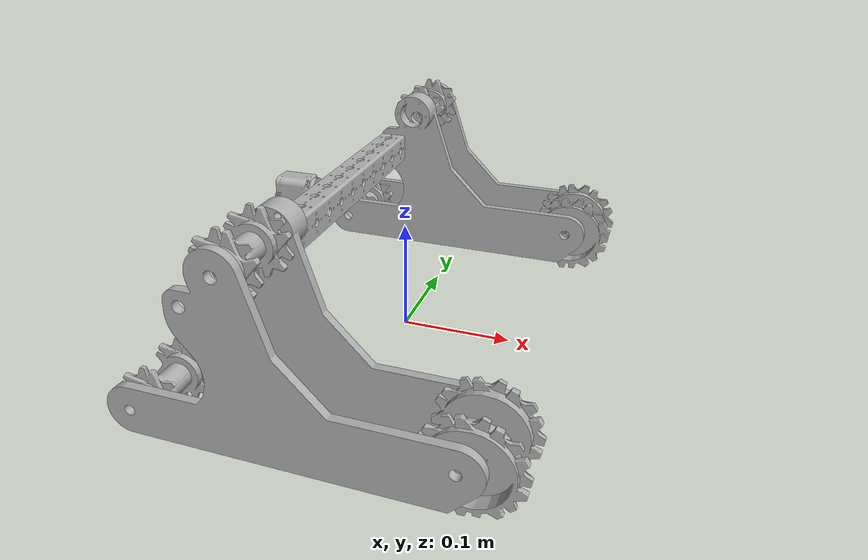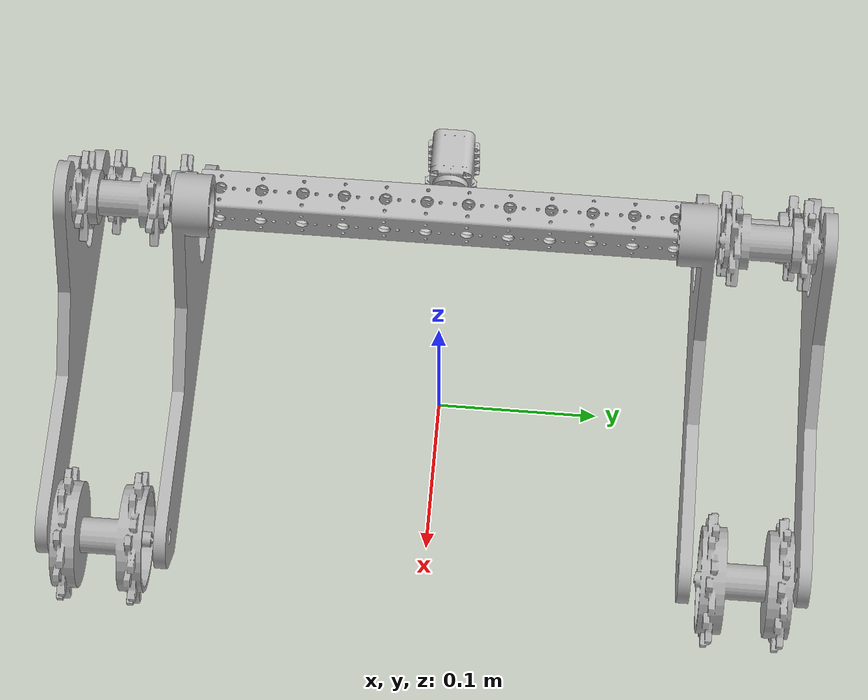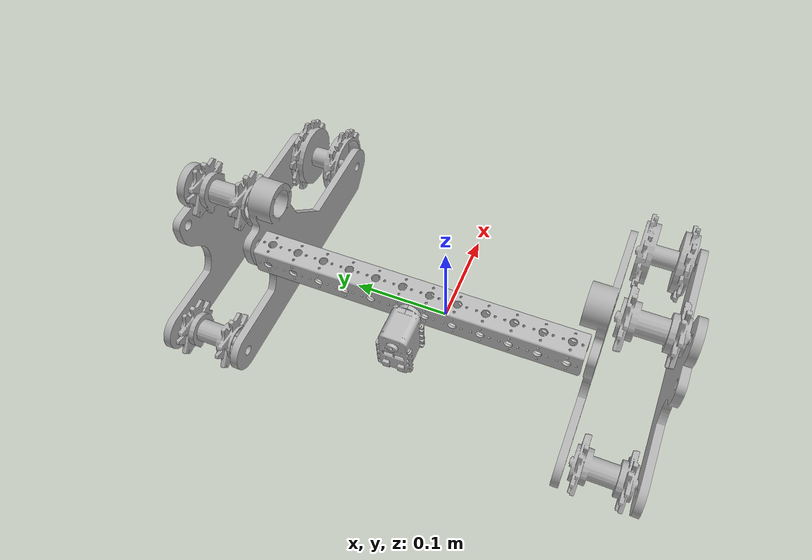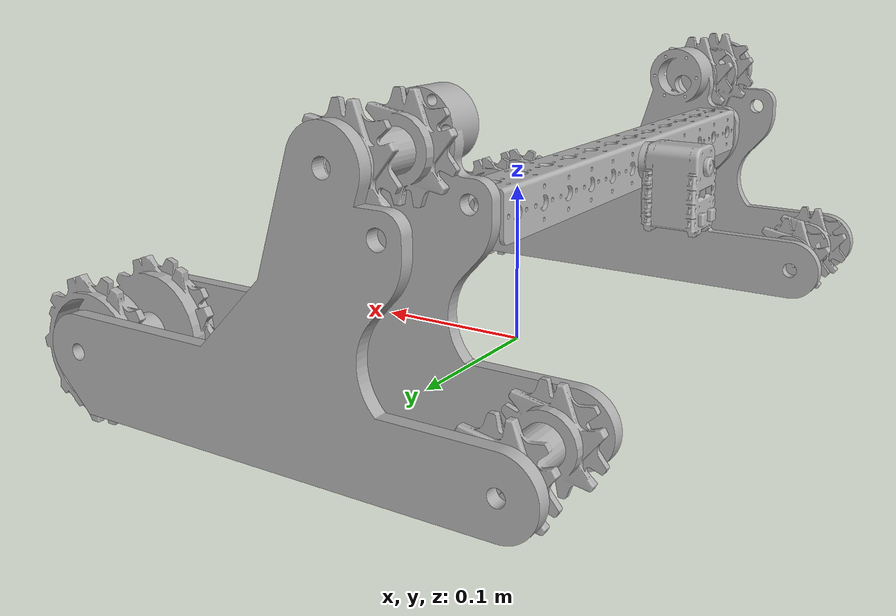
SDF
<sdf version='1.6'>
  <model name='aaly'>
    <link name='aaly__base_link'>
      <pose frame=''>0 0 0 0 -0 0</pose>
      <inertial>
        <pose frame=''>0.00285 0 0.046125 0 -0 0</pose>
        <mass>1.1</mass>
        <inertia>
          <ixx>0.0387675</ixx>
          <ixy>0.004</ixy>
          <ixz>0.00492882</ixz>
          <iyy>0.0117002</iyy>
          <iyz>-7.88337e-06</iyz>
          <izz>0.0396872</izz>
        </inertia>
      </inertial>
      <collision name='aaly__base_link_collision_collision'>
        <pose frame=''>-0.07 0 0.12427 0 -0 0</pose>
        <geometry>
          <box>
            <size>0.026988 0.3 0.026988</size>
          </box>
        </geometry>
      </collision>
      <collision name='aaly__base_link_fixed_joint_lump__aaly__Left_Side_Track_Support_collision_collision_1'>
        <pose frame=''>-0.01373 -0.15812 0.08062 0 -0 0</pose>
        <geometry>
          <mesh>
            <scale>1 1 1</scale>
            <uri>model://aaly_urdf/meshes/Track_Support_Collision_Mesh.dae</uri>
          </mesh>
        </geometry>
      </collision>
      <collision name='aaly__base_link_fixed_joint_lump__aaly__Left_Side_Track_Cover_collision_collision_2'>
        <pose frame=''>-0.01344 -0.23111 0.07613 0 -0 0</pose>
        <geometry>
          <mesh>
            <scale>1 1 1</scale>
            <uri>model://aaly_urdf/meshes/Track_Support_Collision_Mesh.dae</uri>
          </mesh>
        </geometry>
      </collision>
      <collision name='aaly__base_link_fixed_joint_lump__aaly__drum1_collision_collision_3'>
        <pose frame=''>-0.12283 -0.19612 0.03 1.57079 -0 0</pose>
        <geometry>
          <cylinder>
            <length>0.05124</length>
            <radius>0.026525</radius>
          </cylinder>
        </geometry>
      </collision>
      <collision name='aaly__base_link_fixed_joint_lump__aaly__drum3_collision_collision_4'>
        <pose frame=''>0.12484 -0.19612 0.03762 1.57079 -0 0</pose>
        <geometry>
          <cylinder>
            <length>0.05124</length>
            <radius>0.035625</radius>
          </cylinder>
        </geometry>
      </collision>
      <collision name='aaly__base_link_fixed_joint_lump__aaly__drum5_collision_collision_5'>
        <pose frame=''>-0.04604 -0.19612 0.15433 1.57079 -0 0</pose>
        <geometry>
          <cylinder>
            <length>0.05124</length>
            <radius>0.026525</radius>
          </cylinder>
        </geometry>
      </collision>
      <collision name='aaly__base_link_fixed_joint_lump__aaly__Right_Side_Track_Support_collision_collision_6'>
        <pose frame=''>-0.01373 0.15812 0.08562 0 -0 0</pose>
        <geometry>
          <mesh>
            <scale>1 1 1</scale>
            <uri>model://aaly_urdf/meshes/Track_Support_Collision_Mesh.dae</uri>
          </mesh>
        </geometry>
      </collision>
      <collision name='aaly__base_link_fixed_joint_lump__aaly__Right_Side_Track_Cover_collision_collision_7'>
        <pose frame=''>-0.01344 0.23111 0.07612 0 -0 0</pose>
        <geometry>
          <mesh>
            <scale>1 1 1</scale>
            <uri>model://aaly_urdf/meshes/Track_Support_Collision_Mesh.dae</uri>
          </mesh>
        </geometry>
      </collision>
      <collision name='aaly__base_link_fixed_joint_lump__aaly__drum2_collision_collision_8'>
        <pose frame=''>-0.12283 0.19612 0.03 1.57079 -0 0</pose>
        <geometry>
          <cylinder>
            <length>0.05124</length>
            <radius>0.026525</radius>
          </cylinder>
        </geometry>
      </collision>
      <collision name='aaly__base_link_fixed_joint_lump__aaly__drum4_collision_collision_9'>
        <pose frame=''>0.12484 0.19612 0.03762 1.57079 -0 0</pose>
        <geometry>
          <cylinder>
            <length>0.05124</length>
            <radius>0.035625</radius>
          </cylinder>
        </geometry>
      </collision>
      <collision name='aaly__base_link_fixed_joint_lump__aaly__drum6_collision_collision_10'>
        <pose frame=''>-0.04604 0.19612 0.15433 1.57079 -0 0</pose>
        <geometry>
          <cylinder>
            <length>0.05124</length>
            <radius>0.026525</radius>
          </cylinder>
        </geometry>
      </collision>
      <visual name='aaly__base_link_visual_visual'>
        <pose frame=''>-0.07 0 0.12427 0 -0 0</pose>
        <geometry>
          <mesh>
            <scale>1 1 1</scale>
            <uri>model://aaly_urdf/meshes/Horizontal_Support_Bar_ASB-512.dae</uri>
          </mesh>
        </geometry>
      </visual>
      <visual name='aaly__base_link_fixed_joint_lump__aaly__Left_Side_Track_Support_visual_visual_1'>
        <pose frame=''>-0.01373 -0.15812 0.06562 0 -0 0</pose>
        <geometry>
          <mesh>
            <scale>1 1 1</scale>
            <uri>model://aaly_urdf/meshes/Track_Support_Left_Side.dae</uri>
          </mesh>
        </geometry>
      </visual>
      <visual name='aaly__base_link_fixed_joint_lump__aaly__Left_Side_Track_Cover_visual_visual_2'>
        <pose frame=''>-0.01344 -0.23111 0.06113 0 -0 0</pose>
        <geometry>
          <mesh>
            <scale>1 1 1</scale>
            <uri>model://aaly_urdf/meshes/Track_Support_Cover_Side.dae</uri>
          </mesh>
        </geometry>
      </visual>
      <visual name='aaly__base_link_fixed_joint_lump__aaly__drum1_visual_visual_3'>
        <pose frame=''>-0.12283 -0.19612 0.03 1.57079 -0 0</pose>
        <geometry>
          <mesh>
            <scale>1 1 1</scale>
            <uri>model://aaly_urdf/meshes/Lynx_Sproket6in_Hub13.dae</uri>
          </mesh>
        </geometry>
      </visual>
      <visual name='aaly__base_link_fixed_joint_lump__aaly__drum3_visual_visual_4'>
        <pose frame=''>0.12484 -0.19612 0.03762 1.57079 -0 0</pose>
        <geometry>
          <mesh>
            <scale>1 1 1</scale>
            <uri>model://aaly_urdf/meshes/Lynx_Sproket9in_Hub13.dae</uri>
          </mesh>
        </geometry>
      </visual>
      <visual name='aaly__base_link_fixed_joint_lump__aaly__drum5_visual_visual_5'>
        <pose frame=''>-0.04604 -0.19612 0.15433 1.57079 -0 0</pose>
        <geometry>
          <mesh>
            <scale>1 1 1</scale>
            <uri>model://aaly_urdf/meshes/Lynx_Sproket6in_Hub13.dae</uri>
          </mesh>
        </geometry>
      </visual>
      <visual name='aaly__base_link_fixed_joint_lump__aaly__Left_Side_Track_Support_visual_visual_6'>
        <pose frame=''>-0.01373 0.15812 0.07062 0 -0 0</pose>
        <geometry>
          <mesh>
            <scale>1 1 1</scale>
            <uri>model://aaly_urdf/meshes/Track_Support_Right_Side.dae</uri>
          </mesh>
        </geometry>
      </visual>
      <visual name='aaly__base_link_fixed_joint_lump__aaly__Right_Side_Track_Cover_visual_visual_7'>
        <pose frame=''>-0.01344 0.23111 0.06112 0 -0 0</pose>
        <geometry>
          <mesh>
            <scale>1 1 1</scale>
            <uri>model://aaly_urdf/meshes/Track_Support_Cover_Side.dae</uri>
          </mesh>
        </geometry>
      </visual>
      <visual name='aaly__base_link_fixed_joint_lump__aaly__drum2_visual_visual_8'>
        <pose frame=''>-0.12283 0.19612 0.03 1.57079 -0 0</pose>
        <geometry>
          <mesh>
            <scale>1 1 1</scale>
            <uri>model://aaly_urdf/meshes/Lynx_Sproket6in_Hub13.dae</uri>
          </mesh>
        </geometry>
      </visual>
      <visual name='aaly__base_link_fixed_joint_lump__aaly__drum4_visual_visual_9'>
        <pose frame=''>0.12484 0.19612 0.03762 1.57079 -0 0</pose>
        <geometry>
          <mesh>
            <scale>1 1 1</scale>
            <uri>model://aaly_urdf/meshes/Lynx_Sproket9in_Hub13.dae</uri>
          </mesh>
        </geometry>
      </visual>
      <visual name='aaly__base_link_fixed_joint_lump__aaly__drum6_visual_visual_10'>
        <pose frame=''>-0.04604 0.19612 0.15433 1.57079 -0 0</pose>
        <geometry>
          <mesh>
            <scale>1 1 1</scale>
            <uri>model://aaly_urdf/meshes/Lynx_Sproket6in_Hub13.dae</uri>
          </mesh>
        </geometry>
      </visual>
    </link>
    <joint name='fixed' type='revolute'>
      <child>aaly__base_link</child>
      <parent>world</parent>
      <axis>
        <limit>
          <lower>0</lower>
          <upper>0</upper>
        </limit>
        <dynamics>
          <damping>0</damping>
          <friction>0</friction>
          <spring_reference>0</spring_reference>
          <spring_stiffness>0</spring_stiffness>
        </dynamics>
        <use_parent_model_frame>1</use_parent_model_frame>
        <xyz>0 0 1</xyz>
      </axis>
    </joint>
    <link name='aaly__motor1'>
      <pose frame=''>-0.107 0 0.12427 0 -0 0</pose>
      <inertial>
        <pose frame=''>0 0 0 0 -0 0</pose>
        <mass>0.05</mass>
        <inertia>
          <ixx>1.87917e-05</ixx>
          <ixy>0</ixy>
          <ixz>0</ixz>
          <iyy>1.70867e-05</iyy>
          <iyz>0</iyz>
          <izz>1.20267e-05</izz>
        </inertia>
      </inertial>
      <collision name='aaly__motor1_collision_collision'>
        <pose frame=''>0 0 0 0 -0 0</pose>
        <geometry>
          <box>
            <size>0.04 0.032 0.05</size>
          </box>
        </geometry>
      </collision>
      <visual name='aaly__motor1_visual_visual'>
        <pose frame=''>0 0 0 0 -0 0</pose>
        <geometry>
          <mesh>
            <scale>1 1 1</scale>
            <uri>model://aaly_urdf/meshes/AX12-A_origin_same_as_center_of_mass.stl</uri>
          </mesh>
        </geometry>
      </visual>
    </link>
    <joint name='aaly__j1' type='revolute'>
      <child>aaly__motor1</child>
      <parent>aaly__base_link</parent>
      <axis>
        <xyz>1 0 0</xyz>
        <limit>
          <lower>-1e+16</lower>
          <upper>1e+16</upper>
        </limit>
        <dynamics>
          <spring_reference>0</spring_reference>
          <spring_stiffness>0</spring_stiffness>
        </dynamics>
        <use_parent_model_frame>1</use_parent_model_frame>
      </axis>
    </joint>
    <static>0</static>
    <plugin name='gazebo_ros_control' filename='libgazebo_ros_control.so'>
      <robotNamespace/>
      <robotSimType>gazebo_ros_control/DefaultRobotHWSim</robotSimType>
    </plugin>
    <plugin name='differential_drive_controller' filename='libgazebo_ros_diff_drive.so'>
      <alwaysOn>true</alwaysOn>
      <updateRate>100</updateRate>
      <leftJoint>aaly__drum_joint5</leftJoint>
      <rightJoint>aaly__drum_joint6</rightJoint>
      <wheelSeparation>0.349</wheelSeparation>
      <wheelDiameter>0.05885</wheelDiameter>
      <torque>20</torque>
      <commandTopic>cmd_vel</commandTopic>
      <odometryTopic>odom</odometryTopic>
      <odometryFrame>odom</odometryFrame>
      <robotBaseFrame>chassis</robotBaseFrame>
    </plugin>
  </model>
</sdf>
